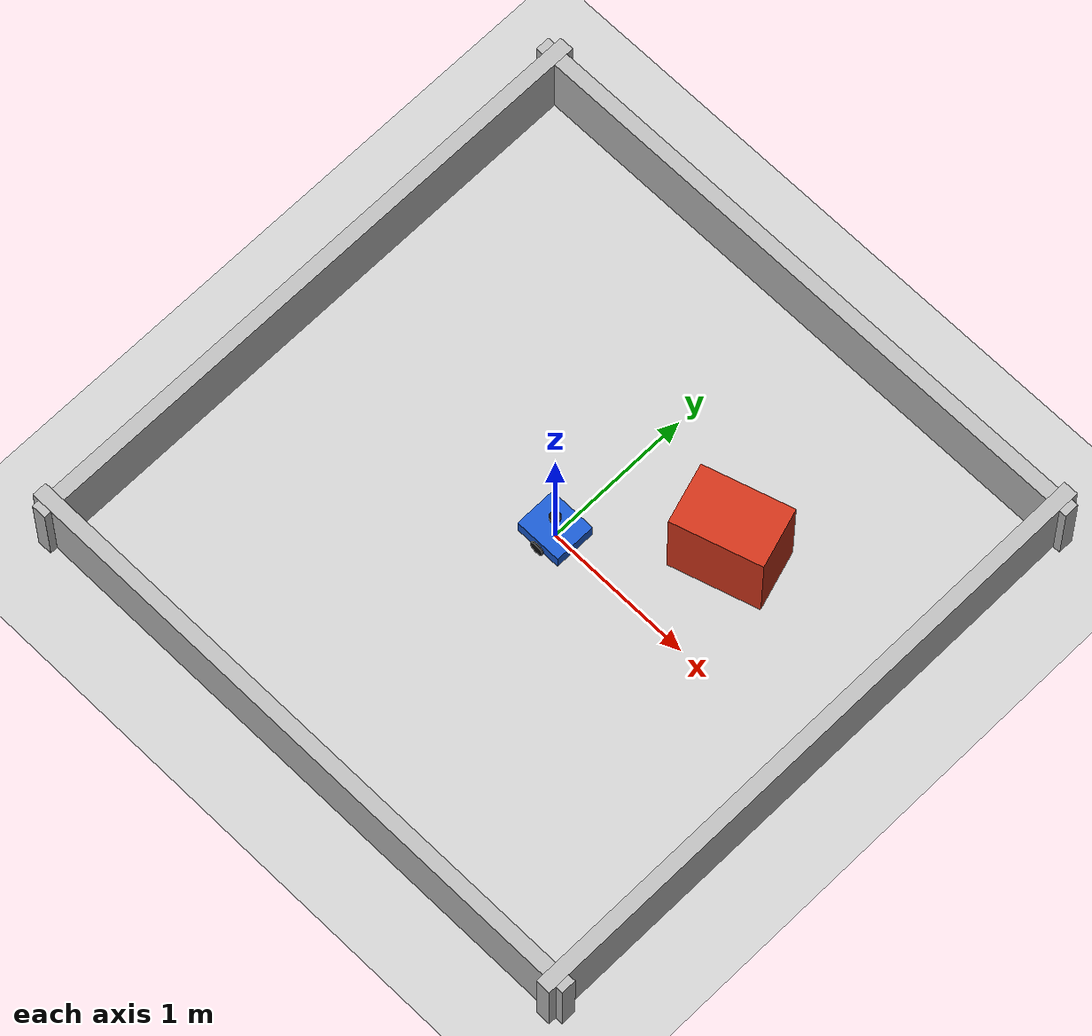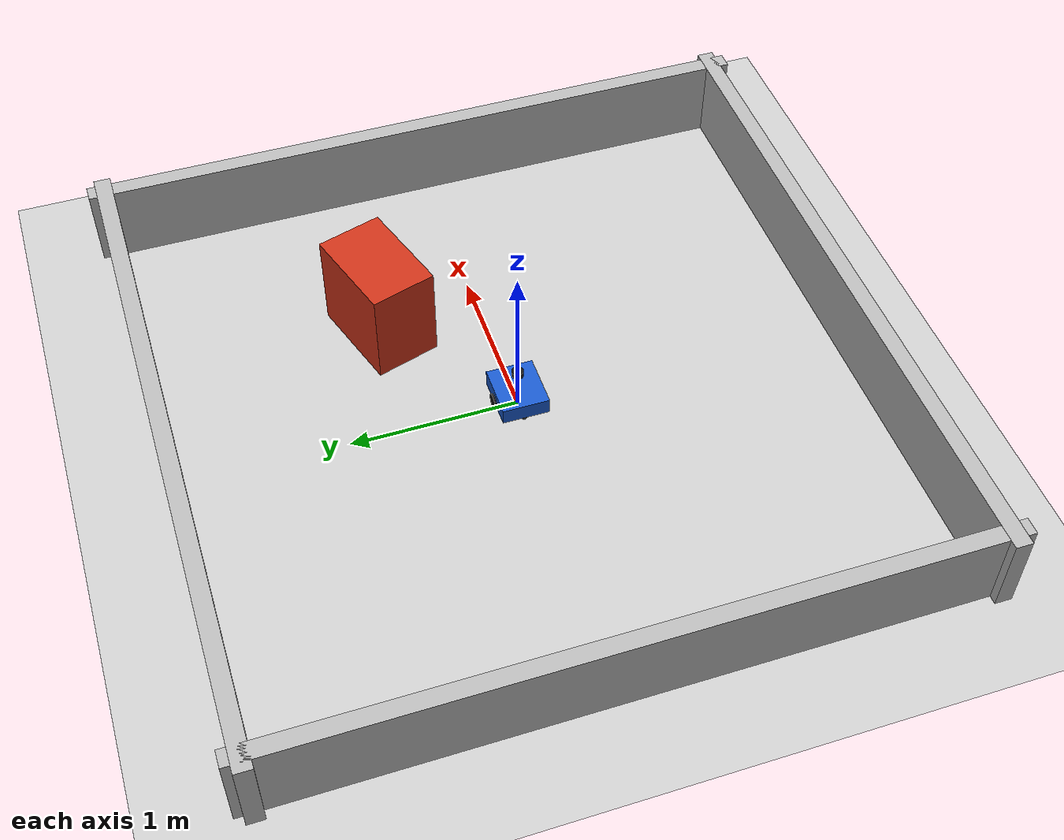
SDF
<?xml version="1.0"?>
<sdf version="1.8">
  <world name="landerpi_test">
    <physics name="default_physics" type="ignored">
      <max_step_size>0.001</max_step_size>
      <real_time_factor>1.0</real_time_factor>
    </physics>

    <plugin filename="ignition-gazebo-physics-system" name="ignition::gazebo::systems::Physics"/>
    <plugin filename="ignition-gazebo-user-commands-system" name="ignition::gazebo::systems::UserCommands"/>
    <plugin filename="ignition-gazebo-scene-broadcaster-system" name="ignition::gazebo::systems::SceneBroadcaster"/>
    <plugin filename="ignition-gazebo-sensors-system" name="ignition::gazebo::systems::Sensors">
      <render_engine>ogre2</render_engine>
    </plugin>

    <light name="sun" type="directional">
      <pose>0 0 10 0 0 0</pose>
      <diffuse>0.8 0.8 0.8 1</diffuse>
      <specular>0.2 0.2 0.2 1</specular>
      <direction>-0.5 0.1 -0.9</direction>
    </light>

    <model name="ground_plane">
      <static>true</static>
      <link name="link">
        <collision name="collision"><geometry><plane><normal>0 0 1</normal><size>8 8</size></plane></geometry></collision>
        <visual name="visual"><geometry><plane><normal>0 0 1</normal><size>8 8</size></plane></geometry></visual>
      </link>
    </model>

    <include>
      <uri>model://landerpi_sim</uri>
      <pose>0 0 0.10 0 0 0</pose>
    </include>

    <model name="north_wall"><static>true</static><pose>0 2 0.25 0 0 0</pose><link name="link"><collision name="collision"><geometry><box><size>4.2 0.10 0.50</size></box></geometry></collision><visual name="visual"><geometry><box><size>4.2 0.10 0.50</size></box></geometry></visual></link></model>
    <model name="south_wall"><static>true</static><pose>0 -2 0.25 0 0 0</pose><link name="link"><collision name="collision"><geometry><box><size>4.2 0.10 0.50</size></box></geometry></collision><visual name="visual"><geometry><box><size>4.2 0.10 0.50</size></box></geometry></visual></link></model>
    <model name="east_wall"><static>true</static><pose>2 0 0.25 0 0 0</pose><link name="link"><collision name="collision"><geometry><box><size>0.10 4.2 0.50</size></box></geometry></collision><visual name="visual"><geometry><box><size>0.10 4.2 0.50</size></box></geometry></visual></link></model>
    <model name="west_wall"><static>true</static><pose>-2 0 0.25 0 0 0</pose><link name="link"><collision name="collision"><geometry><box><size>0.10 4.2 0.50</size></box></geometry></collision><visual name="visual"><geometry><box><size>0.10 4.2 0.50</size></box></geometry></visual></link></model>
    <model name="center_obstacle"><static>true</static><pose>0.8 0.6 0.30 0 0 0.3</pose><link name="link"><collision name="collision"><geometry><box><size>0.6 0.4 0.6</size></box></geometry></collision><visual name="visual"><geometry><box><size>0.6 0.4 0.6</size></box></geometry><material><ambient>0.8 0.2 0.1 1</ambient><diffuse>0.8 0.2 0.1 1</diffuse></material></visual></link></model>
  </world>
</sdf>

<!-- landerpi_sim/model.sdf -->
<sdf version="1.8">
  <model name="landerpi_sim">
    <pose>0 0 0 0 0 0</pose>
    <self_collide>false</self_collide>

    <link name="base_link">
      <inertial>
        <mass>3.0</mass>
        <inertia>
          <ixx>0.0221</ixx>
          <iyy>0.0281</iyy>
          <izz>0.0424</izz>
        </inertia>
      </inertial>
      <collision name="base_collision">
        <geometry><box><size>0.32 0.28 0.10</size></box></geometry>
      </collision>
      <visual name="base_visual">
        <geometry><box><size>0.32 0.28 0.10</size></box></geometry>
        <material>
          <ambient>0.10 0.35 0.80 1</ambient>
          <diffuse>0.10 0.35 0.80 1</diffuse>
        </material>
      </visual>
    </link>

    <link name="left_wheel_link">
      <pose relative_to="base_link">0 0.14 -0.04 1.5708 0 0</pose>
      <inertial>
        <mass>0.20</mass>
        <inertia><ixx>0.00025</ixx><iyy>0.00025</iyy><izz>0.00010</izz></inertia>
      </inertial>
      <collision name="collision">
        <geometry><cylinder><radius>0.05</radius><length>0.025</length></cylinder></geometry>
        <surface><friction><ode><mu>1.0</mu><mu2>1.0</mu2></ode></friction></surface>
      </collision>
      <visual name="visual">
        <geometry><cylinder><radius>0.05</radius><length>0.025</length></cylinder></geometry>
        <material><ambient>0.05 0.05 0.05 1</ambient><diffuse>0.05 0.05 0.05 1</diffuse></material>
      </visual>
    </link>

    <link name="right_wheel_link">
      <pose relative_to="base_link">0 -0.14 -0.04 1.5708 0 0</pose>
      <inertial>
        <mass>0.20</mass>
        <inertia><ixx>0.00025</ixx><iyy>0.00025</iyy><izz>0.00010</izz></inertia>
      </inertial>
      <collision name="collision">
        <geometry><cylinder><radius>0.05</radius><length>0.025</length></cylinder></geometry>
        <surface><friction><ode><mu>1.0</mu><mu2>1.0</mu2></ode></friction></surface>
      </collision>
      <visual name="visual">
        <geometry><cylinder><radius>0.05</radius><length>0.025</length></cylinder></geometry>
        <material><ambient>0.05 0.05 0.05 1</ambient><diffuse>0.05 0.05 0.05 1</diffuse></material>
      </visual>
    </link>

    <link name="rear_caster_link">
      <pose relative_to="base_link">-0.12 0 -0.075 0 0 0</pose>
      <inertial>
        <mass>0.05</mass>
        <inertia><ixx>0.00001</ixx><iyy>0.00001</iyy><izz>0.00001</izz></inertia>
      </inertial>
      <collision name="collision">
        <geometry><sphere><radius>0.025</radius></sphere></geometry>
        <surface><friction><ode><mu>0.05</mu><mu2>0.05</mu2></ode></friction></surface>
      </collision>
      <visual name="visual">
        <geometry><sphere><radius>0.025</radius></sphere></geometry>
        <material><ambient>0.25 0.25 0.25 1</ambient><diffuse>0.25 0.25 0.25 1</diffuse></material>
      </visual>
    </link>

    <link name="laser_link">
      <pose relative_to="base_link">0 0 0.16 0 0 0</pose>
      <inertial>
        <mass>0.10</mass>
        <inertia><ixx>0.00005</ixx><iyy>0.00005</iyy><izz>0.00005</izz></inertia>
      </inertial>
      <collision name="collision">
        <geometry><cylinder><radius>0.035</radius><length>0.035</length></cylinder></geometry>
      </collision>
      <visual name="visual">
        <geometry><cylinder><radius>0.035</radius><length>0.035</length></cylinder></geometry>
        <material><ambient>0.08 0.08 0.08 1</ambient><diffuse>0.08 0.08 0.08 1</diffuse></material>
      </visual>
      <sensor name="lidar" type="gpu_lidar">
        <topic>/sim/scan</topic>
        <update_rate>10</update_rate>
        <always_on>true</always_on>
        <visualize>true</visualize>
        <lidar>
          <scan>
            <horizontal>
              <samples>720</samples>
              <resolution>1</resolution>
              <min_angle>-3.14159265</min_angle>
              <max_angle>3.14159265</max_angle>
            </horizontal>
          </scan>
          <range>
            <min>0.05</min>
            <max>12.0</max>
            <resolution>0.01</resolution>
          </range>
        </lidar>
      </sensor>
    </link>

    <joint name="left_wheel_joint" type="revolute">
      <parent>base_link</parent><child>left_wheel_link</child>
      <axis><xyz expressed_in="__model__">0 1 0</xyz></axis>
    </joint>
    <joint name="right_wheel_joint" type="revolute">
      <parent>base_link</parent><child>right_wheel_link</child>
      <axis><xyz expressed_in="__model__">0 1 0</xyz></axis>
    </joint>
    <joint name="rear_caster_joint" type="ball">
      <parent>base_link</parent><child>rear_caster_link</child>
    </joint>
    <joint name="laser_joint" type="fixed">
      <parent>base_link</parent><child>laser_link</child>
    </joint>

    <plugin filename="ignition-gazebo-diff-drive-system" name="ignition::gazebo::systems::DiffDrive">
      <left_joint>left_wheel_joint</left_joint>
      <right_joint>right_wheel_joint</right_joint>
      <wheel_separation>0.28</wheel_separation>
      <wheel_radius>0.05</wheel_radius>
      <topic>/cmd_vel</topic>
      <odom_topic>/sim/odom</odom_topic>
      <tf_topic>/sim/tf</tf_topic>
      <frame_id>odom</frame_id>
      <child_frame_id>base_link</child_frame_id>
      <odom_publish_frequency>30</odom_publish_frequency>
      <max_linear_acceleration>0.5</max_linear_acceleration>
      <max_angular_acceleration>1.0</max_angular_acceleration>
    </plugin>
  </model>
</sdf>
